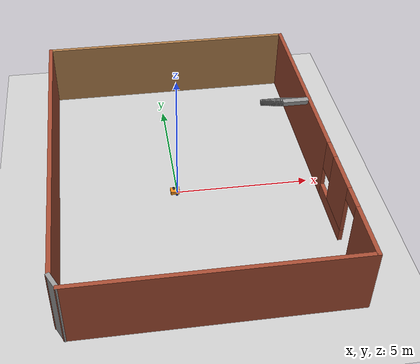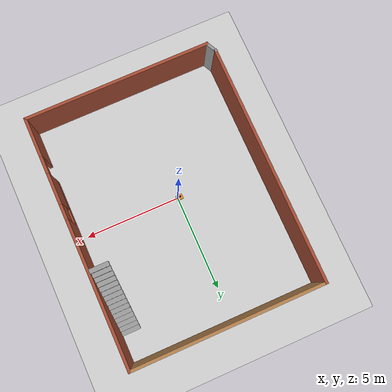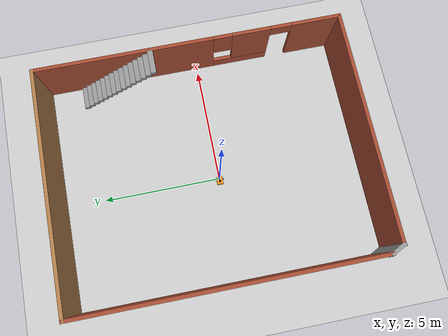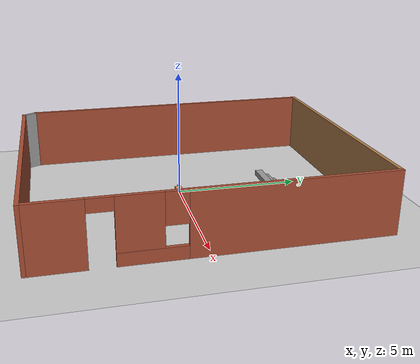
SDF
<sdf version="1.7">
 <world name="default">
  <light name="sun" type="directional">
   <pose>0 0 10 0 -0 0</pose>
   <diffuse>0.8 0.8 0.8 1</diffuse>
   <specular>0.2 0.2 0.2 1</specular>
   <attenuation>
    <range>1000</range>
    <constant>0.9</constant>
    <linear>0.01</linear>
    <quadratic>0.001</quadratic>
   </attenuation>
   <direction>-0.5 0.1 -0.9</direction>
   <spot><inner_angle>0</inner_angle><outer_angle>0</outer_angle><falloff>0</falloff></spot>
  </light>
  <model name="ground_plane">
   <static>1</static>
   <link name="link">
    <collision name="collision">
     <geometry><plane><normal>0 0 1</normal><size>100 100</size></plane></geometry>
     <surface><friction><ode><mu>100</mu><mu2>50</mu2></ode></friction></surface>
    </collision>
    <visual name="visual">
     <cast_shadows>0</cast_shadows>
     <geometry><plane><normal>0 0 1</normal><size>100 100</size></plane></geometry>
     <material>
      <script><uri>file://media/materials/scripts/gazebo.material</uri><name>Gazebo/Grey</name></script>
     </material>
    </visual>
   </link>
  </model>
  <gravity>0 0 -9.8</gravity>
  <magnetic_field>6e-06 2.3e-05 -4.2e-05</magnetic_field>
  <atmosphere type="adiabatic"/>
  <physics type="ode">
   <max_step_size>0.001</max_step_size>
   <real_time_factor>1</real_time_factor>
   <real_time_update_rate>1000</real_time_update_rate>
  </physics>
  <scene><ambient>0.4 0.4 0.4 1</ambient><background>0.7 0.7 0.7 1</background><shadows>1</shadows></scene>
  <audio><device>default</device></audio>
  <spherical_coordinates>
   <surface_model>EARTH_WGS84</surface_model>
   <latitude_deg>0</latitude_deg>
   <longitude_deg>0</longitude_deg>
   <elevation>0</elevation>
   <heading_deg>0</heading_deg>
  </spherical_coordinates>
  <model name="bot_name">
   <link name="base_link">
    <inertial>
     <pose>-0.067475 0 0.081082 0 -0 0</pose>
     <mass>0.61</mass>
     <inertia>
      <ixx>0.00561212</ixx>
      <ixy>0</ixy>
      <ixz>0.000452976</ixz>
      <iyy>0.00760557</iyy>
      <iyz>0</iyz>
      <izz>0.00797093</izz>
     </inertia>
    </inertial>
    <collision name="base_link_fixed_joint_lump__chassis_collision">
     <pose>-0.0585 0 0.059 0 -0 0</pose>
     <geometry><box><size>0.335 0.265 0.138</size></box></geometry>
    </collision>
    <collision name="base_link_fixed_joint_lump__caster_wheel_collision_1">
     <pose>-0.151 0 -0.024 0 -0 0</pose>
     <geometry><sphere><radius>0.01</radius></sphere></geometry>
     <surface><friction><ode><mu>0.001</mu><mu2>0.001</mu2></ode></friction></surface>
    </collision>
    <collision name="base_link_fixed_joint_lump__laser_frame_collision_2">
     <pose>-0.104 0 0.202 0 -0 0</pose>
     <geometry><cylinder><length>0.04</length><radius>0.05</radius></cylinder></geometry>
    </collision>
    <visual name="base_link_fixed_joint_lump__chassis_visual">
     <pose>-0.0585 0 0.059 0 -0 0</pose>
     <geometry><box><size>0.335 0.265 0.138</size></box></geometry>
     <material>
      <script><name>Gazebo/Orange</name><uri>file://media/materials/scripts/gazebo.material</uri></script>
     </material>
    </visual>
    <visual name="base_link_fixed_joint_lump__camera_link_visual_1">
     <pose>0.05 0 0.171 0 -0 0</pose>
     <geometry><box><size>0.01 0.03 0.03</size></box></geometry>
     <material>
      <script><name>Gazebo/Black</name><uri>file://media/materials/scripts/gazebo.material</uri></script>
     </material>
    </visual>
    <visual name="base_link_fixed_joint_lump__camera_link_visual_2">
     <pose>0.05 0 0.121 0 -0 0</pose>
     <geometry><cylinder><length>0.1</length><radius>0.002</radius></cylinder></geometry>
     <material>
      <script><name>Gazebo/Black</name><uri>file://media/materials/scripts/gazebo.material</uri></script>
     </material>
    </visual>
    <visual name="base_link_fixed_joint_lump__caster_wheel_visual_3">
     <pose>-0.151 0 -0.024 0 -0 0</pose>
     <geometry><sphere><radius>0.01</radius></sphere></geometry>
     <material>
      <script><name>Gazebo/White</name><uri>file://media/materials/scripts/gazebo.material</uri></script>
     </material>
    </visual>
    <visual name="base_link_fixed_joint_lump__face_link_visual_4">
     <pose>0.109 0.05 0.069 3.14159 1.57079 3.14159</pose>
     <geometry><cylinder><length>0.002</length><radius>0.01</radius></cylinder></geometry>
     <material>
      <script><name>Gazebo/Black</name><uri>file://media/materials/scripts/gazebo.material</uri></script>
     </material>
    </visual>
    <visual name="base_link_fixed_joint_lump__face_link_visual_5">
     <pose>0.109 -0.05 0.069 3.14159 1.57079 3.14159</pose>
     <geometry><cylinder><length>0.002</length><radius>0.01</radius></cylinder></geometry>
     <material>
      <script><name>Gazebo/Black</name><uri>file://media/materials/scripts/gazebo.material</uri></script>
     </material>
    </visual>
    <visual name="base_link_fixed_joint_lump__face_link_visual_6">
     <pose>0.098 0 0.059 0 1.5 0</pose>
     <geometry><cylinder><length>0.02</length><radius>0.05</radius></cylinder></geometry>
     <material>
      <script><name>Gazebo/Black</name><uri>file://media/materials/scripts/gazebo.material</uri></script>
     </material>
    </visual>
    <visual name="base_link_fixed_joint_lump__laser_frame_visual_7">
     <pose>-0.104 0 0.202 0 -0 0</pose>
     <geometry><cylinder><length>0.04</length><radius>0.05</radius></cylinder></geometry>
     <material>
      <script><name>Gazebo/Black</name><uri>file://media/materials/scripts/gazebo.material</uri></script>
     </material>
    </visual>
    <visual name="base_link_fixed_joint_lump__laser_frame_visual_8">
     <pose>-0.104 0 0.152 0 -0 0</pose>
     <geometry><cylinder><length>0.1</length><radius>0.01</radius></cylinder></geometry>
     <material>
      <script><name>Gazebo/Black</name><uri>file://media/materials/scripts/gazebo.material</uri></script>
     </material>
    </visual>
    <sensor name="camera" type="camera">
     <visualize>1</visualize>
     <update_rate>10</update_rate>
     <camera>
      <horizontal_fov>1.089</horizontal_fov>
      <image><format>R8G8B8</format><width>640</width><height>480</height></image>
      <clip><near>0.05</near><far>8</far></clip>
     </camera>
     <plugin name="camera_controller" filename="libgazebo_ros_camera.so">
      <frame_name>camera_link_optical</frame_name>
     </plugin>
     <pose>0.05 0 0.171 0 -0 0</pose>
    </sensor>
    <sensor name="laser" type="ray">
     <visualize>0</visualize>
     <update_rate>10</update_rate>
     <ray>
      <scan>
       <horizontal>
        <samples>360</samples>
        <min_angle>-3.14</min_angle>
        <max_angle>3.14</max_angle>
        <resolution>1</resolution>
       </horizontal>
       <vertical><samples>1</samples><min_angle>0</min_angle><max_angle>0</max_angle></vertical>
      </scan>
      <range><min>0.3</min><max>12</max></range>
     </ray>
     <plugin name="laser_controller" filename="libgazebo_ros_ray_sensor.so">
      <ros><argument>~/out:=scan</argument></ros>
      <output_type>sensor_msgs/LaserScan</output_type>
      <frame_name>laser_frame</frame_name>
     </plugin>
     <pose>-0.104 0 0.202 0 -0 0</pose>
    </sensor>
   </link>
   <joint name="left_wheel_joint" type="revolute">
    <pose relative_to="base_link">0 0.166 0 -1.5708 0 0</pose>
    <parent>base_link</parent>
    <child>left_wheel</child>
    <axis>
     <xyz>0 0 1</xyz>
     <limit><lower>-1e+16</lower><upper>1e+16</upper></limit>
     <dynamics><spring_reference>0</spring_reference><spring_stiffness>0</spring_stiffness></dynamics>
    </axis>
   </joint>
   <link name="left_wheel">
    <pose relative_to="left_wheel_joint">0 0 0 0 -0 0</pose>
    <inertial>
     <mass>0.05</mass>
     <inertia>
      <ixx>1.72667e-05</ixx>
      <ixy>0</ixy>
      <ixz>0</ixz>
      <iyy>1.72667e-05</iyy>
      <iyz>0</iyz>
      <izz>2.89e-05</izz>
     </inertia>
    </inertial>
    <collision name="left_wheel_collision">
     <geometry><sphere><radius>0.034</radius></sphere></geometry>
    </collision>
    <visual name="left_wheel_visual">
     <geometry><cylinder><length>0.026</length><radius>0.034</radius></cylinder></geometry>
     <material>
      <script><name>Gazebo/Blue</name><uri>file://media/materials/scripts/gazebo.material</uri></script>
     </material>
    </visual>
   </link>
   <joint name="right_wheel_joint" type="revolute">
    <pose relative_to="base_link">0 -0.166 0 1.5708 -0 0</pose>
    <parent>base_link</parent>
    <child>right_wheel</child>
    <axis>
     <xyz>0 0 -1</xyz>
     <limit><lower>-1e+16</lower><upper>1e+16</upper></limit>
     <dynamics><spring_reference>0</spring_reference><spring_stiffness>0</spring_stiffness></dynamics>
    </axis>
   </joint>
   <link name="right_wheel">
    <pose relative_to="right_wheel_joint">0 0 0 0 -0 0</pose>
    <inertial>
     <mass>0.05</mass>
     <inertia>
      <ixx>1.72667e-05</ixx>
      <ixy>0</ixy>
      <ixz>0</ixz>
      <iyy>1.72667e-05</iyy>
      <iyz>0</iyz>
      <izz>2.89e-05</izz>
     </inertia>
    </inertial>
    <collision name="right_wheel_collision">
     <geometry><sphere><radius>0.034</radius></sphere></geometry>
    </collision>
    <visual name="right_wheel_visual">
     <geometry><cylinder><length>0.026</length><radius>0.034</radius></cylinder></geometry>
     <material>
      <script><name>Gazebo/Blue</name><uri>file://media/materials/scripts/gazebo.material</uri></script>
     </material>
    </visual>
   </link>
   <static>0</static>
   <plugin name="gazebo_ros2_control" filename="libgazebo_ros2_control.so">
    <parameters>/home/salahuddin/ros2_ws/install/articubot_one/share/articubot_one/config/my_controllers.yaml</parameters>
   </plugin>
   <pose>-0.0368 8.3e-05 0.033997 1.7e-05 2.1e-05 0.001101</pose>
  </model>
  <model name="my_building">
   <pose>0.419727 0.282573 0 0 -0 0</pose>
   <link name="Stairs_0">
    <visual name="Stairs_0_Visual_0">
     <pose>4.39649 4.8621 0.083333 0 -0 0</pose>
     <geometry><box><size>1 0.233333 0.166667</size></box></geometry>
     <material>
      <script><uri>file://media/materials/scripts/gazebo.material</uri><name>Gazebo/Grey</name></script>
      <ambient>1 1 1 1</ambient>
     </material>
     <meta><layer>0</layer></meta>
    </visual>
    <collision name="Stairs_0_Collision_0">
     <geometry><box><size>1 0.233333 0.166667</size></box></geometry>
     <pose>4.39649 4.8621 0.083333 0 -0 0</pose>
    </collision>
    <visual name="Stairs_0_Visual_1">
     <pose>4.39649 4.62876 0.25 0 -0 0</pose>
     <geometry><box><size>1 0.233333 0.166667</size></box></geometry>
     <material>
      <script><uri>file://media/materials/scripts/gazebo.material</uri><name>Gazebo/Grey</name></script>
      <ambient>1 1 1 1</ambient>
     </material>
     <meta><layer>0</layer></meta>
    </visual>
    <collision name="Stairs_0_Collision_1">
     <geometry><box><size>1 0.233333 0.166667</size></box></geometry>
     <pose>4.39649 4.62876 0.25 0 -0 0</pose>
    </collision>
    <visual name="Stairs_0_Visual_2">
     <pose>4.39649 4.39543 0.416667 0 -0 0</pose>
     <geometry><box><size>1 0.233333 0.166667</size></box></geometry>
     <material>
      <script><uri>file://media/materials/scripts/gazebo.material</uri><name>Gazebo/Grey</name></script>
      <ambient>1 1 1 1</ambient>
     </material>
     <meta><layer>0</layer></meta>
    </visual>
    <collision name="Stairs_0_Collision_2">
     <geometry><box><size>1 0.233333 0.166667</size></box></geometry>
     <pose>4.39649 4.39543 0.416667 0 -0 0</pose>
    </collision>
    <visual name="Stairs_0_Visual_3">
     <pose>4.39649 4.1621 0.583333 0 -0 0</pose>
     <geometry><box><size>1 0.233333 0.166667</size></box></geometry>
     <material>
      <script><uri>file://media/materials/scripts/gazebo.material</uri><name>Gazebo/Grey</name></script>
      <ambient>1 1 1 1</ambient>
     </material>
     <meta><layer>0</layer></meta>
    </visual>
    <collision name="Stairs_0_Collision_3">
     <geometry><box><size>1 0.233333 0.166667</size></box></geometry>
     <pose>4.39649 4.1621 0.583333 0 -0 0</pose>
    </collision>
    <visual name="Stairs_0_Visual_4">
     <pose>4.39649 3.92876 0.75 0 -0 0</pose>
     <geometry><box><size>1 0.233333 0.166667</size></box></geometry>
     <material>
      <script><uri>file://media/materials/scripts/gazebo.material</uri><name>Gazebo/Grey</name></script>
      <ambient>1 1 1 1</ambient>
     </material>
     <meta><layer>0</layer></meta>
    </visual>
    <collision name="Stairs_0_Collision_4">
     <geometry><box><size>1 0.233333 0.166667</size></box></geometry>
     <pose>4.39649 3.92876 0.75 0 -0 0</pose>
    </collision>
    <visual name="Stairs_0_Visual_5">
     <pose>4.39649 3.69543 0.916667 0 -0 0</pose>
     <geometry><box><size>1 0.233333 0.166667</size></box></geometry>
     <material>
      <script><uri>file://media/materials/scripts/gazebo.material</uri><name>Gazebo/Grey</name></script>
      <ambient>1 1 1 1</ambient>
     </material>
     <meta><layer>0</layer></meta>
    </visual>
    <collision name="Stairs_0_Collision_5">
     <geometry><box><size>1 0.233333 0.166667</size></box></geometry>
     <pose>4.39649 3.69543 0.916667 0 -0 0</pose>
    </collision>
    <visual name="Stairs_0_Visual_6">
     <pose>4.39649 3.4621 1.08333 0 -0 0</pose>
     <geometry><box><size>1 0.233333 0.166667</size></box></geometry>
     <material>
      <script><uri>file://media/materials/scripts/gazebo.material</uri><name>Gazebo/Grey</name></script>
      <ambient>1 1 1 1</ambient>
     </material>
     <meta><layer>0</layer></meta>
    </visual>
    <collision name="Stairs_0_Collision_6">
     <geometry><box><size>1 0.233333 0.166667</size></box></geometry>
     <pose>4.39649 3.4621 1.08333 0 -0 0</pose>
    </collision>
    <visual name="Stairs_0_Visual_7">
     <pose>4.39649 3.22876 1.25 0 -0 0</pose>
     <geometry><box><size>1 0.233333 0.166667</size></box></geometry>
     <material>
      <script><uri>file://media/materials/scripts/gazebo.material</uri><name>Gazebo/Grey</name></script>
      <ambient>1 1 1 1</ambient>
     </material>
     <meta><layer>0</layer></meta>
    </visual>
    <collision name="Stairs_0_Collision_7">
     <geometry><box><size>1 0.233333 0.166667</size></box></geometry>
     <pose>4.39649 3.22876 1.25 0 -0 0</pose>
    </collision>
    <visual name="Stairs_0_Visual_8">
     <pose>4.39649 2.99543 1.41667 0 -0 0</pose>
     <geometry><box><size>1 0.233333 0.166667</size></box></geometry>
     <material>
      <script><uri>file://media/materials/scripts/gazebo.material</uri><name>Gazebo/Grey</name></script>
      <ambient>1 1 1 1</ambient>
     </material>
     <meta><layer>0</layer></meta>
    </visual>
    <collision name="Stairs_0_Collision_8">
     <geometry><box><size>1 0.233333 0.166667</size></box></geometry>
     <pose>4.39649 2.99543 1.41667 0 -0 0</pose>
    </collision>
    <visual name="Stairs_0_Visual_9">
     <pose>4.39649 2.76209 1.58333 0 -0 0</pose>
     <geometry><box><size>1 0.233333 0.166667</size></box></geometry>
     <material>
      <script><uri>file://media/materials/scripts/gazebo.material</uri><name>Gazebo/Grey</name></script>
      <ambient>1 1 1 1</ambient>
     </material>
     <meta><layer>0</layer></meta>
    </visual>
    <collision name="Stairs_0_Collision_9">
     <geometry><box><size>1 0.233333 0.166667</size></box></geometry>
     <pose>4.39649 2.76209 1.58333 0 -0 0</pose>
    </collision>
    <visual name="Stairs_0_Visual_10">
     <pose>4.39649 2.52876 1.75 0 -0 0</pose>
     <geometry><box><size>1 0.233333 0.166667</size></box></geometry>
     <material>
      <script><uri>file://media/materials/scripts/gazebo.material</uri><name>Gazebo/Grey</name></script>
      <ambient>1 1 1 1</ambient>
     </material>
     <meta><layer>0</layer></meta>
    </visual>
    <collision name="Stairs_0_Collision_10">
     <geometry><box><size>1 0.233333 0.166667</size></box></geometry>
     <pose>4.39649 2.52876 1.75 0 -0 0</pose>
    </collision>
    <visual name="Stairs_0_Visual_11">
     <pose>4.39649 2.29543 1.91667 0 -0 0</pose>
     <geometry><box><size>1 0.233333 0.166667</size></box></geometry>
     <material>
      <script><uri>file://media/materials/scripts/gazebo.material</uri><name>Gazebo/Grey</name></script>
      <ambient>1 1 1 1</ambient>
     </material>
     <meta><layer>0</layer></meta>
    </visual>
    <collision name="Stairs_0_Collision_11">
     <geometry><box><size>1 0.233333 0.166667</size></box></geometry>
     <pose>4.39649 2.29543 1.91667 0 -0 0</pose>
    </collision>
    <visual name="Stairs_0_Visual_12">
     <pose>4.39649 2.06209 2.08333 0 -0 0</pose>
     <geometry><box><size>1 0.233333 0.166667</size></box></geometry>
     <material>
      <script><uri>file://media/materials/scripts/gazebo.material</uri><name>Gazebo/Grey</name></script>
      <ambient>1 1 1 1</ambient>
     </material>
     <meta><layer>0</layer></meta>
    </visual>
    <collision name="Stairs_0_Collision_12">
     <geometry><box><size>1 0.233333 0.166667</size></box></geometry>
     <pose>4.39649 2.06209 2.08333 0 -0 0</pose>
    </collision>
    <visual name="Stairs_0_Visual_13">
     <pose>4.39649 1.82876 2.25 0 -0 0</pose>
     <geometry><box><size>1 0.233333 0.166667</size></box></geometry>
     <material>
      <script><uri>file://media/materials/scripts/gazebo.material</uri><name>Gazebo/Grey</name></script>
      <ambient>1 1 1 1</ambient>
     </material>
     <meta><layer>0</layer></meta>
    </visual>
    <collision name="Stairs_0_Collision_13">
     <geometry><box><size>1 0.233333 0.166667</size></box></geometry>
     <pose>4.39649 1.82876 2.25 0 -0 0</pose>
    </collision>
    <visual name="Stairs_0_Visual_14">
     <pose>4.39649 1.59543 2.41667 0 -0 0</pose>
     <geometry><box><size>1 0.233333 0.166667</size></box></geometry>
     <material>
      <script><uri>file://media/materials/scripts/gazebo.material</uri><name>Gazebo/Grey</name></script>
      <ambient>1 1 1 1</ambient>
     </material>
     <meta><layer>0</layer></meta>
    </visual>
    <collision name="Stairs_0_Collision_14">
     <geometry><box><size>1 0.233333 0.166667</size></box></geometry>
     <pose>4.39649 1.59543 2.41667 0 -0 0</pose>
    </collision>
   </link>
   <link name="Wall_0">
    <collision name="Wall_0_Collision">
     <geometry><box><size>12.5 0.15 2.5</size></box></geometry>
     <pose>0 0 1.25 0 -0 0</pose>
    </collision>
    <visual name="Wall_0_Visual">
     <pose>0 0 1.25 0 -0 0</pose>
     <geometry><box><size>12.5 0.15 2.5</size></box></geometry>
     <material>
      <script><uri>file://media/materials/scripts/gazebo.material</uri><name>Gazebo/Bricks</name></script>
      <ambient>1 1 1 1</ambient>
     </material>
     <meta><layer>0</layer></meta>
    </visual>
    <pose>-4.91219 0.262811 0 0 -0 1.5708</pose>
   </link>
   <link name="Wall_1">
    <collision name="Wall_1_Collision">
     <geometry><box><size>10 0.15 2.5</size></box></geometry>
     <pose>0 0 1.25 0 -0 0</pose>
    </collision>
    <visual name="Wall_1_Visual">
     <pose>0 0 1.25 0 -0 0</pose>
     <geometry><box><size>10 0.15 2.5</size></box></geometry>
     <material>
      <script><uri>file://media/materials/scripts/gazebo.material</uri><name>Gazebo/Wood</name></script>
      <ambient>1 1 1 1</ambient>
     </material>
     <meta><layer>0</layer></meta>
    </visual>
    <pose>0.012811 6.43781 0 0 -0 0</pose>
   </link>
   <link name="Wall_2">
    <pose>4.93781 0.012811 0 0 -0 -1.5708</pose>
    <visual name="Wall_2_Visual_0">
     <pose>-2.70852 0 1.25 0 -0 0</pose>
     <geometry><box><size>7.58296 0.15 2.5</size></box></geometry>
     <material>
      <script><uri>file://media/materials/scripts/gazebo.material</uri><name>Gazebo/Bricks</name></script>
      <ambient>1 1 1 1</ambient>
     </material>
     <meta><layer>0</layer></meta>
    </visual>
    <collision name="Wall_2_Collision_0">
     <geometry><box><size>7.58296 0.15 2.5</size></box></geometry>
     <pose>-2.70852 0 1.25 0 -0 0</pose>
    </collision>
    <visual name="Wall_2_Visual_1">
     <pose>5.44937 0 1.25 0 -0 0</pose>
     <geometry><box><size>2.10127 0.15 2.5</size></box></geometry>
     <material>
      <script><uri>file://media/materials/scripts/gazebo.material</uri><name>Gazebo/Bricks</name></script>
      <ambient>1 1 1 1</ambient>
     </material>
     <meta><layer>0</layer></meta>
    </visual>
    <collision name="Wall_2_Collision_1">
     <geometry><box><size>2.10127 0.15 2.5</size></box></geometry>
     <pose>5.44937 0 1.25 0 -0 0</pose>
    </collision>
    <visual name="Wall_2_Visual_2">
     <pose>2.29085 0 0.25 0 -0 0</pose>
     <geometry><box><size>2.41577 0.15 0.5</size></box></geometry>
     <material>
      <script><uri>file://media/materials/scripts/gazebo.material</uri><name>Gazebo/Bricks</name></script>
      <ambient>1 1 1 1</ambient>
     </material>
     <meta><layer>0</layer></meta>
    </visual>
    <collision name="Wall_2_Collision_2">
     <geometry><box><size>2.41577 0.15 0.5</size></box></geometry>
     <pose>2.29085 0 0.25 0 -0 0</pose>
    </collision>
    <visual name="Wall_2_Visual_3">
     <pose>2.69085 0 1.5 0 -0 0</pose>
     <geometry><box><size>1.61577 0.15 2</size></box></geometry>
     <material>
      <script><uri>file://media/materials/scripts/gazebo.material</uri><name>Gazebo/Bricks</name></script>
      <ambient>1 1 1 1</ambient>
     </material>
     <meta><layer>0</layer></meta>
    </visual>
    <collision name="Wall_2_Collision_3">
     <geometry><box><size>1.61577 0.15 2</size></box></geometry>
     <pose>2.69085 0 1.5 0 -0 0</pose>
    </collision>
    <visual name="Wall_2_Visual_4">
     <pose>1.48297 0 1.9 0 -0 0</pose>
     <geometry><box><size>0.8 0.15 1.2</size></box></geometry>
     <material>
      <script><uri>file://media/materials/scripts/gazebo.material</uri><name>Gazebo/Bricks</name></script>
      <ambient>1 1 1 1</ambient>
     </material>
     <meta><layer>0</layer></meta>
    </visual>
    <collision name="Wall_2_Collision_4">
     <geometry><box><size>0.8 0.15 1.2</size></box></geometry>
     <pose>1.48297 0 1.9 0 -0 0</pose>
    </collision>
    <visual name="Wall_2_Visual_5">
     <pose>3.94873 0 2.25 0 -0 0</pose>
     <geometry><box><size>0.9 0.15 0.5</size></box></geometry>
     <material>
      <script><uri>file://media/materials/scripts/gazebo.material</uri><name>Gazebo/Bricks</name></script>
      <ambient>1 1 1 1</ambient>
     </material>
     <meta><layer>0</layer></meta>
    </visual>
    <collision name="Wall_2_Collision_5">
     <geometry><box><size>0.9 0.15 0.5</size></box></geometry>
     <pose>3.94873 0 2.25 0 -0 0</pose>
    </collision>
   </link>
   <link name="Wall_3">
    <collision name="Wall_3_Collision">
     <geometry><box><size>9.75 0.15 2.5</size></box></geometry>
     <pose>0 0 1.25 0 -0 0</pose>
    </collision>
    <visual name="Wall_3_Visual">
     <pose>0 0 1.25 0 -0 0</pose>
     <geometry><box><size>9.75 0.15 2.5</size></box></geometry>
     <material>
      <script><uri>file://media/materials/scripts/gazebo.material</uri><name>Gazebo/Bricks</name></script>
      <ambient>1 1 1 1</ambient>
     </material>
     <meta><layer>0</layer></meta>
    </visual>
    <pose>0.137811 -6.41219 0 0 -0 3.14159</pose>
   </link>
   <link name="Wall_4">
    <collision name="Wall_4_Collision">
     <geometry><box><size>0.709017 0.15 2.5</size></box></geometry>
     <pose>0 0 1.25 0 -0 0</pose>
    </collision>
    <visual name="Wall_4_Visual">
     <pose>0 0 1.25 0 -0 0</pose>
     <geometry><box><size>0.709017 0.15 2.5</size></box></geometry>
     <material>
      <script><uri>file://media/materials/scripts/gazebo.material</uri><name>Gazebo/Grey</name></script>
      <ambient>1 1 1 1</ambient>
     </material>
     <meta><layer>0</layer></meta>
    </visual>
    <pose>-4.78719 -6.16219 0 0 -0 2.03444</pose>
   </link>
   <static>1</static>
  </model>
 </world>
</sdf>
